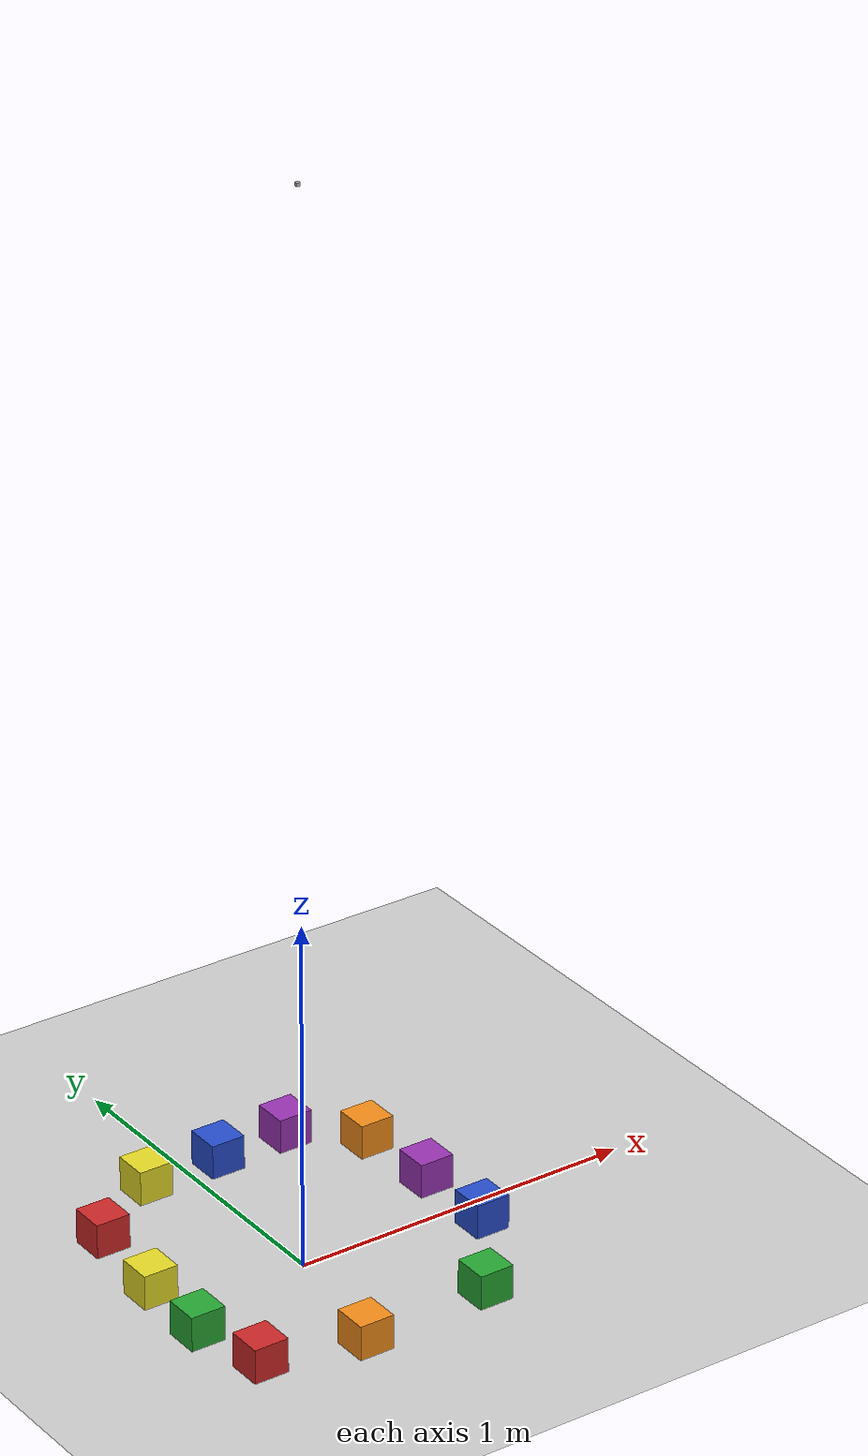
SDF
<sdf version="1.7">
 <world name="default">
  <light name="sun" type="directional">
   <pose>0 0 10 0 -0 0</pose>
   <diffuse>0.8 0.8 0.8 1</diffuse>
   <specular>0.2 0.2 0.2 1</specular>
   <attenuation>
    <range>1000</range>
    <constant>0.9</constant>
    <linear>0.01</linear>
    <quadratic>0.001</quadratic>
   </attenuation>
   <direction>-0.5 0.1 -0.9</direction>
   <spot><inner_angle>0</inner_angle><outer_angle>0</outer_angle><falloff>0</falloff></spot>
  </light>
  <model name="ground_plane">
   <static>1</static>
   <link name="link">
    <collision name="collision">
     <geometry><plane><normal>0 0 1</normal><size>100 100</size></plane></geometry>
     <surface><friction><ode><mu>100</mu><mu2>50</mu2></ode></friction></surface>
    </collision>
    <visual name="visual">
     <cast_shadows>0</cast_shadows>
     <geometry><plane><normal>0 0 1</normal><size>100 100</size></plane></geometry>
     <material>
      <script><uri>file://media/materials/scripts/gazebo.material</uri><name>Gazebo/Grey</name></script>
     </material>
    </visual>
   </link>
  </model>
  <gravity>0 0 -9.8</gravity>
  <magnetic_field>6e-06 2.3e-05 -4.2e-05</magnetic_field>
  <atmosphere type="adiabatic"/>
  <physics type="ode">
   <max_step_size>0.001</max_step_size>
   <real_time_factor>1</real_time_factor>
   <real_time_update_rate>1000</real_time_update_rate>
  </physics>
  <scene><ambient>0.4 0.4 0.4 1</ambient><background>0.7 0.7 0.7 1</background><shadows>1</shadows></scene>
  <spherical_coordinates>
   <surface_model>EARTH_WGS84</surface_model>
   <latitude_deg>0</latitude_deg>
   <longitude_deg>0</longitude_deg>
   <elevation>0</elevation>
   <heading_deg>0</heading_deg>
  </spherical_coordinates>
  <model name="box_red_1">
   <pose>-0.412155 0.310448 0.1 0 -0 0</pose>
   <link name="link">
    <inertial>
     <mass>1</mass>
     <inertia>
      <ixx>0.166667</ixx>
      <ixy>0</ixy>
      <ixz>0</ixz>
      <iyy>0.166667</iyy>
      <iyz>0</iyz>
      <izz>0.166667</izz>
     </inertia>
    </inertial>
    <collision name="collision"><geometry><box><size>0.1 0.1 0.1</size></box></geometry></collision>
    <visual name="visual">
     <geometry><box><size>0.1 0.1 0.1</size></box></geometry>
     <material>
      <script><name>Gazebo/Red</name><uri>file://media/materials/scripts/gazebo.material</uri></script>
     </material>
    </visual>
   </link>
  </model>
  <model name="box_red_2">
   <pose>-0.4 -0.4 0.1 0 -0 0</pose>
   <link name="link">
    <inertial>
     <mass>1</mass>
     <inertia>
      <ixx>0.166667</ixx>
      <ixy>0</ixy>
      <ixz>0</ixz>
      <iyy>0.166667</iyy>
      <iyz>0</iyz>
      <izz>0.166667</izz>
     </inertia>
    </inertial>
    <collision name="collision"><geometry><box><size>0.1 0.1 0.1</size></box></geometry></collision>
    <visual name="visual">
     <geometry><box><size>0.1 0.1 0.1</size></box></geometry>
     <material>
      <script><name>Gazebo/Red</name><uri>file://media/materials/scripts/gazebo.material</uri></script>
     </material>
    </visual>
   </link>
  </model>
  <model name="box_orange_1">
   <pose>-0.124 -0.462 0.1 0 -0 0</pose>
   <link name="link">
    <inertial>
     <mass>1</mass>
     <inertia>
      <ixx>0.166667</ixx>
      <ixy>0</ixy>
      <ixz>0</ixz>
      <iyy>0.166667</iyy>
      <iyz>0</iyz>
      <izz>0.166667</izz>
     </inertia>
    </inertial>
    <collision name="collision"><geometry><box><size>0.1 0.1 0.1</size></box></geometry></collision>
    <visual name="visual">
     <geometry><box><size>0.1 0.1 0.1</size></box></geometry>
     <material>
      <script><name>Gazebo/Orange</name><uri>file://media/materials/scripts/gazebo.material</uri></script>
     </material>
    </visual>
   </link>
  </model>
  <model name="box_orange_2">
   <pose>0.423979 0.325092 0.1 0 -0 0</pose>
   <link name="link">
    <inertial>
     <mass>1</mass>
     <inertia>
      <ixx>0.166667</ixx>
      <ixy>0</ixy>
      <ixz>0</ixz>
      <iyy>0.166667</iyy>
      <iyz>0</iyz>
      <izz>0.166667</izz>
     </inertia>
    </inertial>
    <collision name="collision"><geometry><box><size>0.1 0.1 0.1</size></box></geometry></collision>
    <visual name="visual">
     <geometry><box><size>0.1 0.1 0.1</size></box></geometry>
     <material>
      <script><name>Gazebo/Orange</name><uri>file://media/materials/scripts/gazebo.material</uri></script>
     </material>
    </visual>
   </link>
  </model>
  <model name="box_blue_1">
   <pose>0.445 -0.168661 0.1 0 -0 0</pose>
   <link name="link">
    <inertial>
     <mass>1</mass>
     <inertia>
      <ixx>0.166667</ixx>
      <ixy>0</ixy>
      <ixz>0</ixz>
      <iyy>0.166667</iyy>
      <iyz>0</iyz>
      <izz>0.166667</izz>
     </inertia>
    </inertial>
    <collision name="collision"><geometry><box><size>0.1 0.1 0.1</size></box></geometry></collision>
    <visual name="visual">
     <geometry><box><size>0.1 0.1 0.1</size></box></geometry>
     <material>
      <script><name>Gazebo/Blue</name><uri>file://media/materials/scripts/gazebo.material</uri></script>
     </material>
    </visual>
   </link>
  </model>
  <model name="box_blue_2">
   <pose>0.044550 0.464797 0.1 0 -0 0</pose>
   <link name="link">
    <inertial>
     <mass>1</mass>
     <inertia>
      <ixx>0.166667</ixx>
      <ixy>0</ixy>
      <ixz>0</ixz>
      <iyy>0.166667</iyy>
      <iyz>0</iyz>
      <izz>0.166667</izz>
     </inertia>
    </inertial>
    <collision name="collision"><geometry><box><size>0.1 0.1 0.1</size></box></geometry></collision>
    <visual name="visual">
     <geometry><box><size>0.1 0.1 0.1</size></box></geometry>
     <material>
      <script><name>Gazebo/Blue</name><uri>file://media/materials/scripts/gazebo.material</uri></script>
     </material>
    </visual>
   </link>
  </model>
  <model name="box_green_1">
   <pose>0.257155 -0.445794 0.1 0 -0 0</pose>
   <link name="link">
    <inertial>
     <mass>1</mass>
     <inertia>
      <ixx>0.166667</ixx>
      <ixy>0</ixy>
      <ixz>0</ixz>
      <iyy>0.166667</iyy>
      <iyz>0</iyz>
      <izz>0.166667</izz>
     </inertia>
    </inertial>
    <collision name="collision"><geometry><box><size>0.1 0.1 0.1</size></box></geometry></collision>
    <visual name="visual">
     <geometry><box><size>0.1 0.1 0.1</size></box></geometry>
     <material>
      <script><name>Gazebo/Green</name><uri>file://media/materials/scripts/gazebo.material</uri></script>
     </material>
    </visual>
   </link>
  </model>
  <model name="box_green_2">
   <pose>-0.448872 -0.188842 0.1 0 -0 0</pose>
   <link name="link">
    <inertial>
     <mass>1</mass>
     <inertia>
      <ixx>0.166667</ixx>
      <ixy>0</ixy>
      <ixz>0</ixz>
      <iyy>0.166667</iyy>
      <iyz>0</iyz>
      <izz>0.166667</izz>
     </inertia>
    </inertial>
    <collision name="collision"><geometry><box><size>0.1 0.1 0.1</size></box></geometry></collision>
    <visual name="visual">
     <geometry><box><size>0.1 0.1 0.1</size></box></geometry>
     <material>
      <script><name>Gazebo/Green</name><uri>file://media/materials/scripts/gazebo.material</uri></script>
     </material>
    </visual>
   </link>
  </model>
  <model name="box_yellow_2">
   <pose>-0.181861 0.462542 0.1 0 -0 0</pose>
   <link name="link">
    <inertial>
     <mass>1</mass>
     <inertia>
      <ixx>0.166667</ixx>
      <ixy>0</ixy>
      <ixz>0</ixz>
      <iyy>0.166667</iyy>
      <iyz>0</iyz>
      <izz>0.166667</izz>
     </inertia>
    </inertial>
    <collision name="collision"><geometry><box><size>0.1 0.1 0.1</size></box></geometry></collision>
    <visual name="visual">
     <geometry><box><size>0.1 0.1 0.1</size></box></geometry>
     <material>
      <script><name>Gazebo/Yellow</name><uri>file://media/materials/scripts/gazebo.material</uri></script>
     </material>
    </visual>
   </link>
  </model>
  <model name="box_yellow_1">
   <pose>-0.442747 0.038217 0.1 0 -0 0</pose>
   <link name="link">
    <inertial>
     <mass>1</mass>
     <inertia>
      <ixx>0.166667</ixx>
      <ixy>0</ixy>
      <ixz>0</ixz>
      <iyy>0.166667</iyy>
      <iyz>0</iyz>
      <izz>0.166667</izz>
     </inertia>
    </inertial>
    <collision name="collision"><geometry><box><size>0.1 0.1 0.1</size></box></geometry></collision>
    <visual name="visual">
     <geometry><box><size>0.1 0.1 0.1</size></box></geometry>
     <material>
      <script><name>Gazebo/Yellow</name><uri>file://media/materials/scripts/gazebo.material</uri></script>
     </material>
    </visual>
   </link>
  </model>
  <model name="box_purple_1">
   <pose>0.441221 0.076835 0.1 0 -0 0</pose>
   <link name="link">
    <inertial>
     <mass>1</mass>
     <inertia>
      <ixx>0.166667</ixx>
      <ixy>0</ixy>
      <ixz>0</ixz>
      <iyy>0.166667</iyy>
      <iyz>0</iyz>
      <izz>0.166667</izz>
     </inertia>
    </inertial>
    <collision name="collision"><geometry><box><size>0.1 0.1 0.1</size></box></geometry></collision>
    <visual name="visual">
     <geometry><box><size>0.1 0.1 0.1</size></box></geometry>
     <material>
      <script><name>Gazebo/Purple</name><uri>file://media/materials/scripts/gazebo.material</uri></script>
     </material>
    </visual>
   </link>
  </model>
  <model name="box_purple_2">
   <pose>0.263207 0.472039 0.1 0 -0 0</pose>
   <link name="link">
    <inertial>
     <mass>1</mass>
     <inertia>
      <ixx>0.166667</ixx>
      <ixy>0</ixy>
      <ixz>0</ixz>
      <iyy>0.166667</iyy>
      <iyz>0</iyz>
      <izz>0.166667</izz>
     </inertia>
    </inertial>
    <collision name="collision"><geometry><box><size>0.1 0.1 0.1</size></box></geometry></collision>
    <visual name="visual">
     <geometry><box><size>0.1 0.1 0.1</size></box></geometry>
     <material>
      <script><name>Gazebo/Purple</name><uri>file://media/materials/scripts/gazebo.material</uri></script>
     </material>
    </visual>
   </link>
  </model>
  <model name="camera_model">
   <static>true</static>
   <link name="cam_frontal">
    <pose>0 0 3 0 1.57 0</pose>
    <inertial>
     <mass>0.015</mass>
     <inertia>
      <ixx>4.15e-6</ixx>
      <ixy>0</ixy>
      <ixz>0</ixz>
      <iyy>2.407e-6</iyy>
      <iyz>0</iyz>
      <izz>2.407e-6</izz>
     </inertia>
    </inertial>
    <collision name="cam_frontal_collision">
     <geometry><box><size>0.01 0.01 0.01</size></box></geometry>
    </collision>
    <visual name="cam_frontal_visual"><geometry><box><size>0.01 0.01 0.01</size></box></geometry></visual>
    <sensor name="camera" type="camera">
     <camera name="cam_frontal">
      <horizontal_fov>1.047</horizontal_fov>
      <image><width>640</width><height>480</height><format>R8G8B8</format></image>
      <clip><near>0.1</near><far>10</far></clip>
     </camera>
     <always_on>1</always_on>
     <update_rate>30</update_rate>
     <visualize>0</visualize>
     <plugin name="camera_plugin" filename="libgazebo_ros_camera.so">
      <baseline>0.2</baseline>
      <robotNamespace>world</robotNamespace>
      <alwaysOn>true</alwaysOn>
      <imageTopicName>image_raw</imageTopicName>
      <cameraInfoTopicName>camera_info</cameraInfoTopicName>
      <updateRate>30.0</updateRate>
      <cameraName>cam_frontal</cameraName>
      <frameName>camera_frame</frameName>
      <distortionK1>0</distortionK1>
      <distortionK2>0</distortionK2>
      <distortionK3>0</distortionK3>
      <distortionT1>0</distortionT1>
      <distortionT2>0</distortionT2>
      <CxPrime>320.5</CxPrime>
      <Cx>320.5</Cx>
      <Cy>240.5</Cy>
      <focalLength>0.0</focalLength>
      <hackBaseline>0</hackBaseline>
     </plugin>
    </sensor>
   </link>
  </model>
 </world>
</sdf>
